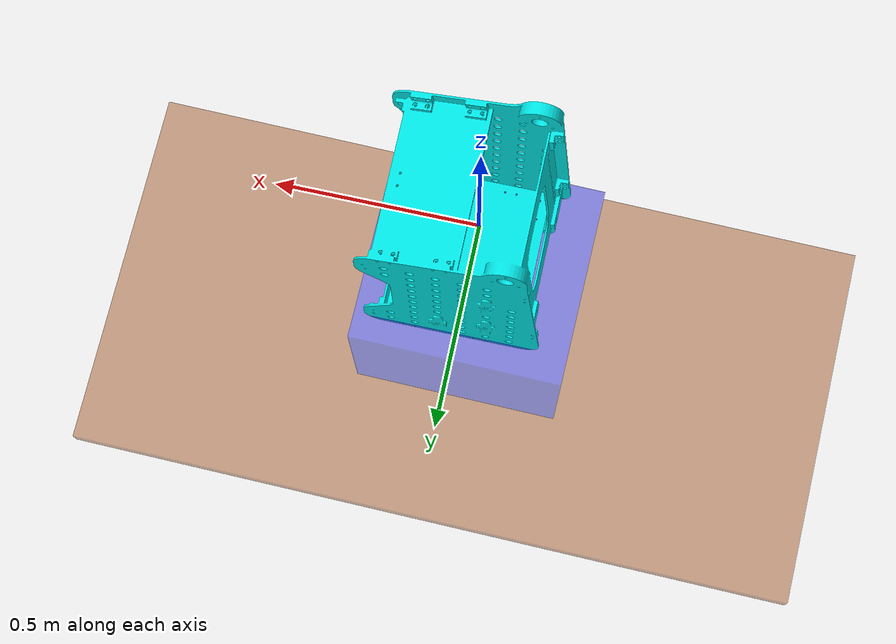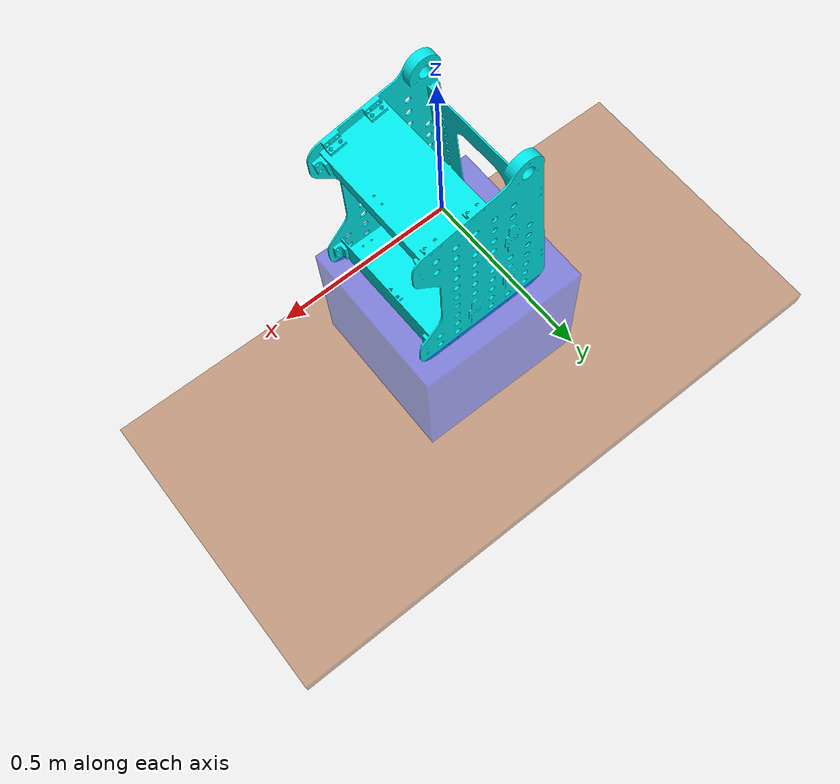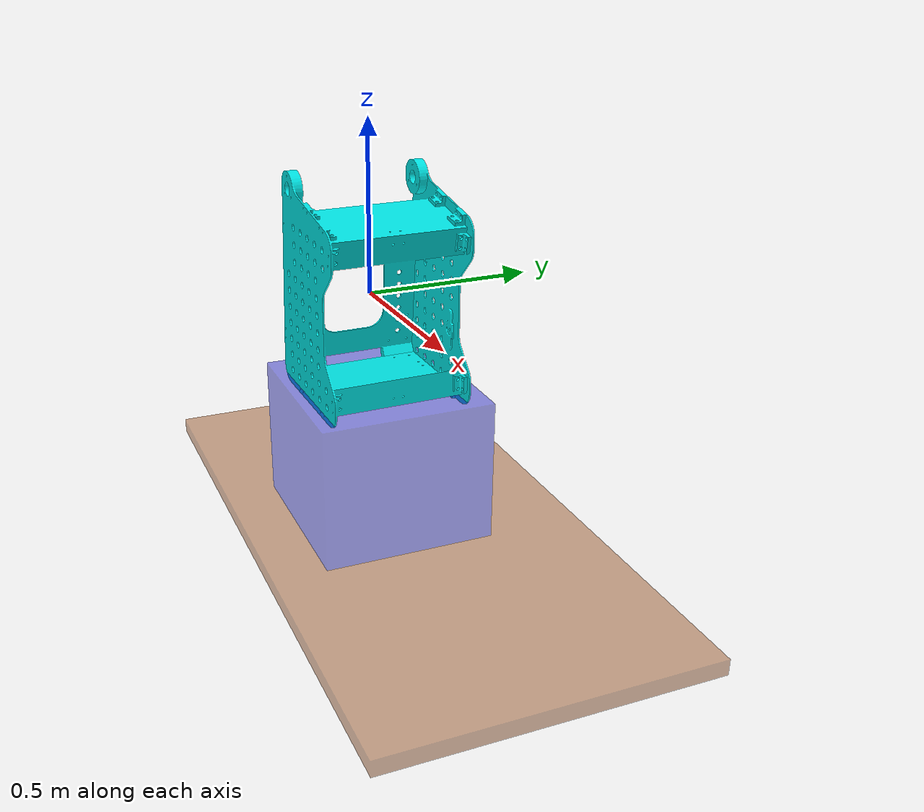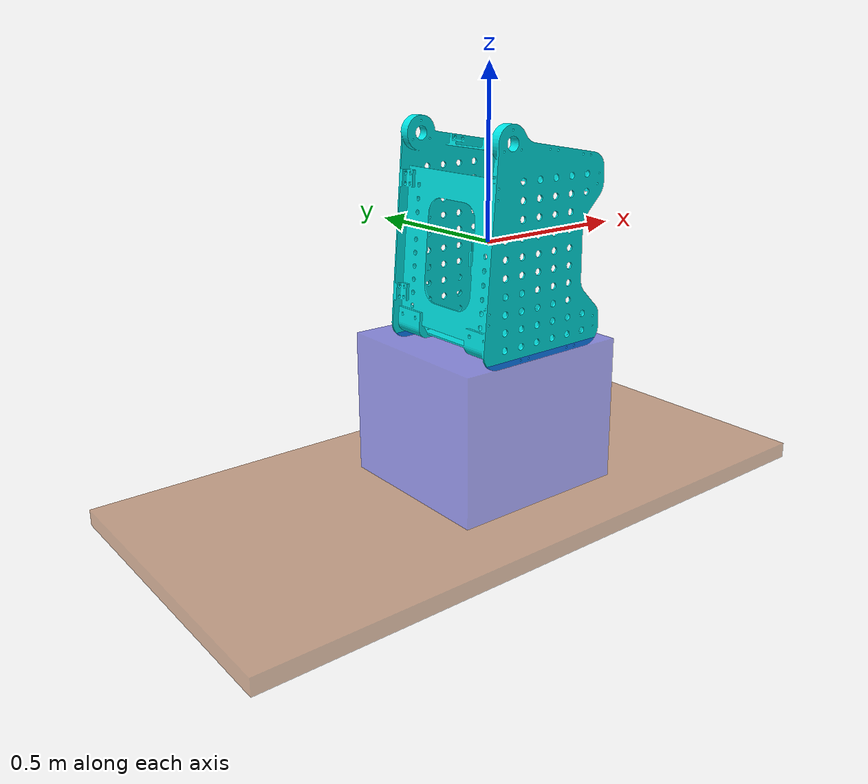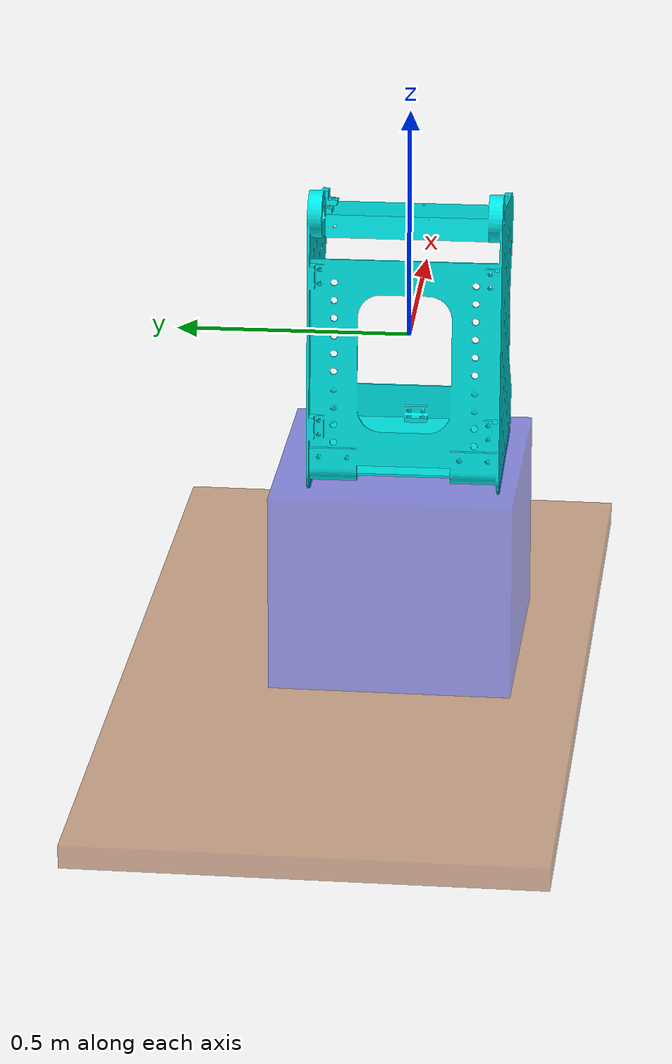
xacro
<?xml version="1.0"?>
<robot xmlns:xacro="http://www.ros.org/wiki/xacro" name="pylone">

  <!-- Include the pylone urdf -->
  <xacro:include filename="$(find agimus_demo_08_polishing)/urdf/pylone.urdf.xacro"/>

  <!-- Include the fer robot xacro -->
  <xacro:include filename="$(find franka_description)/robots/common/franka_robot.xacro"/>

  <xacro:arg name="with_sc" default="false" />

  <!-- Materials -->
  <material name="brown">
    <color rgba="0.6 0.3 0.1 0.5"/>
  </material>

  <material name="blue">
    <color rgba="0.1 0.1 0.8 0.5"/>
  </material>

  <!-- table (under the robot) -->
  <link name="table_link">
    <visual>
      <geometry>
        <box size="2.0 1.0 0.05"/>
      </geometry>
      <material name="brown"/>
    </visual>
    <collision>
      <geometry>
        <box size="2.0 1.0 0.05"/>
      </geometry>
    </collision>
    <inertial>
      <origin rpy="0 0 0" xyz="0 0 0"/>
      <mass value="10.0"/>
      <inertia ixx="1.67" ixy="0" ixz="0" iyy="1.67" iyz="0" izz="1.67"/>
    </inertial>
  </link>

  <!-- Side box (for the pylone) -->
  <link name="base_box_link">
    <visual>
      <geometry>
        <box size="0.55 0.52 0.435"/>
      </geometry>
      <material name="blue"/>
    </visual>
    <collision>
      <geometry>
        <box size="0.55 0.52 0.435"/>
      </geometry>
    </collision>
    <inertial>
      <origin rpy="0 0 0" xyz="0 0 0"/>
      <mass value="5.0"/>
      <inertia ixx="0.52" ixy="0" ixz="0" iyy="0.52" iyz="0" izz="0.52"/>
    </inertial>
  </link>

  <!-- Joint connecting side box to pylone (on top of side box) -->
  <joint name="pylone_to_box_joint" type="fixed">
    <parent link="pylone_link"/>
    <child link="base_box_link"/>
    <origin xyz="0 0.015 -0.50" rpy="0 0 -0.02"/>
  </joint>

  <!-- Joint connecting table to fer robot base (on top of table) -->
  <joint name="base_box_to_table_joint" type="fixed">
    <parent link="base_box_link"/>
    <child link="table_link"/>
    <origin xyz="0.0 0.1 -0.291" rpy="0 0 0"/>
  </joint>

  <xacro:pylone with_sc="$(arg with_sc)" />

</robot>

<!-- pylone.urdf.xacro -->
<robot xmlns:xacro="http://ros.org/wiki/xacro" name="pylone">
   <xacro:include filename="$(find franka_description)/robots/common/utils.xacro" />

   <xacro:macro name="pylone" params="with_sc:=false">

      <material name="grey">
         <color rgba=".5 .5 .5 1" />
      </material>

      <link name="pylone_link">
         <visual>
            <geometry>
               <mesh filename="package://agimus_demo_08_polishing/urdf/meshes/visual/pylone.stl"
                  scale="1.0 1.0 1.0" />
            </geometry>
            <material name="grey">
               <color rgba="0.0 0.9 0.9 1.0" />
            </material>
         </visual>
         <collision>
            <geometry>
               <mesh filename="package://agimus_demo_08_polishing/urdf/meshes/collision/pylone.stl"
                  scale="1.0 1.0 1.0" />
            </geometry>
         </collision>
         <inertial>
            <origin rpy="0 0 0" xyz="0.0 0.0 0.0" />
            <mass value="0.1" />
            <inertia ixx="1" ixy="0" ixz="0" iyy="1" iyz="0" izz="1" />
         </inertial>
      </link>
      <xacro:if value="${with_sc}">
         <link name="pylone_sc_link">
            <!-- Side edges representing the hole -->
            <xacro:collision_capsule xyz="0.03 0.1 -0.045" direction="z" radius="0.004" length="0.6" />
            <xacro:collision_capsule xyz="0.03 -0.1 -0.045" direction="z" radius="0.004" length="0.6" />

            <!-- Top and bottom bard representing the hole -->
            <xacro:collision_capsule xyz="0.03 0.0 ${0.15 - 0.045}" direction="y" radius="0.004" length="0.4" />
            <xacro:collision_capsule xyz="0.03 0.0 ${-0.15 - 0.045}" direction="y" radius="0.004" length="0.4" />

            <!-- Edges of the pytlone -->
            <xacro:collision_capsule xyz="0.0 0.205 0.0" direction="z" radius="0.004" length="1.3" />
            <xacro:collision_capsule xyz="0.0 -0.205 0.0" direction="z" radius="0.004" length="1.3" />

            <collision>
               <origin rpy="0 0 0" xyz="0.25 0.2025 0.0" />
               <geometry>
                  <box size="0.5 0.005 0.55"/>
               </geometry>
            </collision>
         </link>
         <joint name="pylone_sc_link_joint" type="fixed">
            <origin rpy="0.0 0.0873 0.0" xyz="-0.171 0.0 0.03" />
            <parent link="pylone_link" />
            <child link="pylone_sc_link" />
         </joint>
      </xacro:if>
   </xacro:macro>
</robot>
